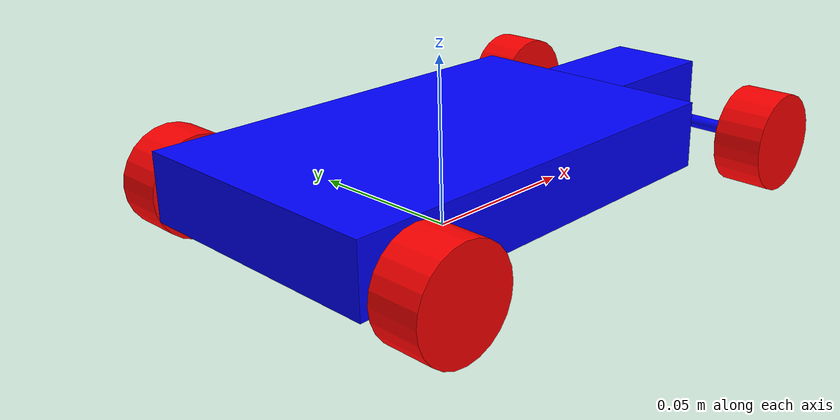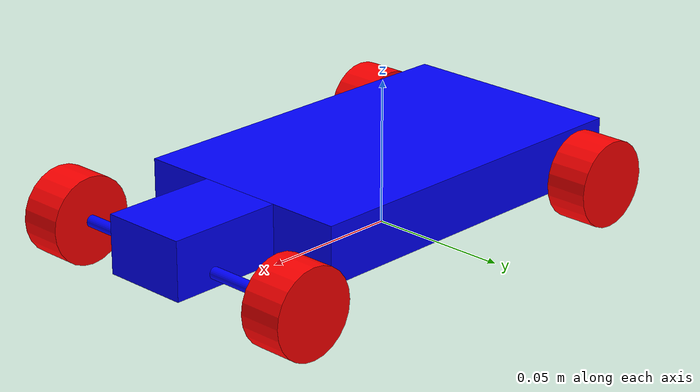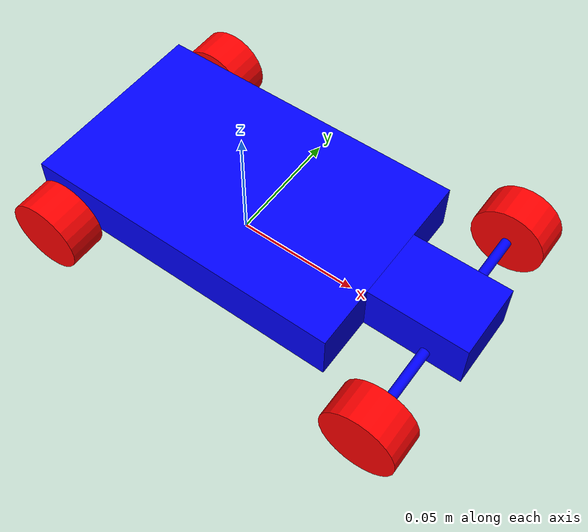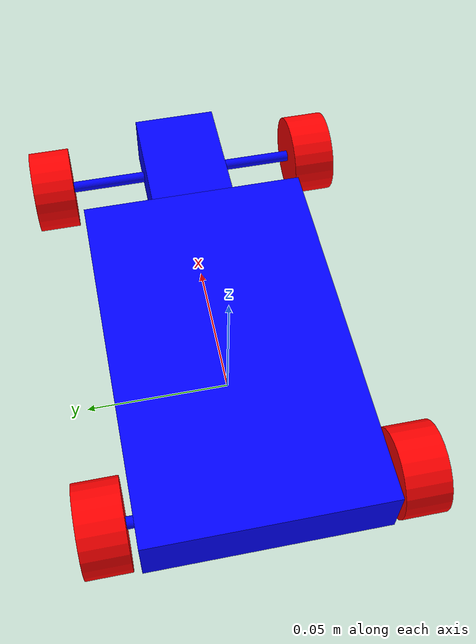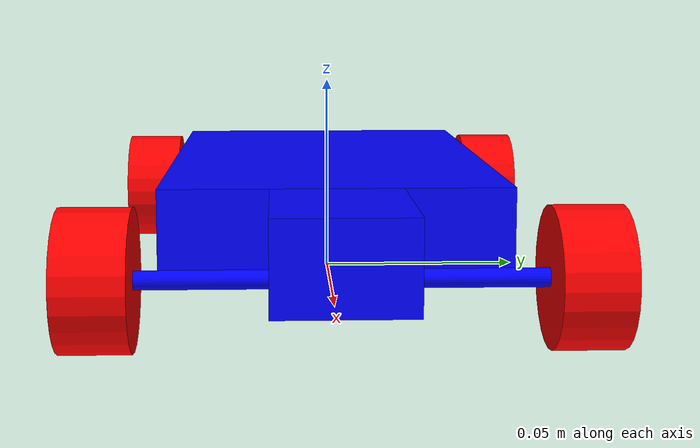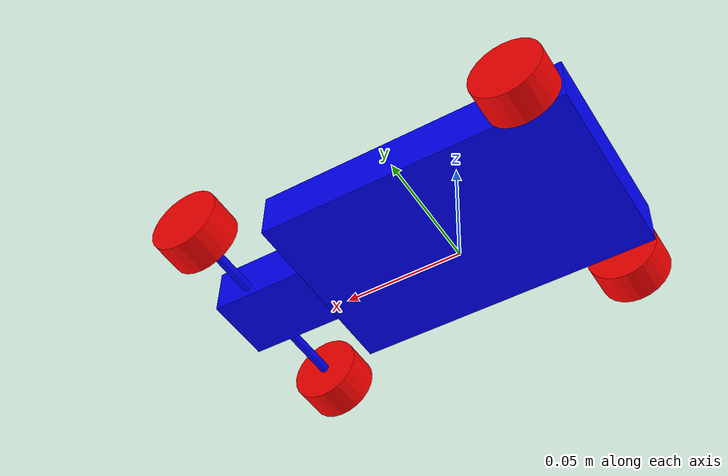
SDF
<?xml version="1.0" ?>
<sdf version="1.8">
    <model name='car' canonical_link='chassis'>
        <link name='chassis'>
            <pose relative_to='__model__'>0 0 0.02 0 0 0</pose>
            <inertial>
                <mass>1.15</mass>
                <inertia>
                    <ixx>0.0006516666666666667</ixx>
                    <ixy>0</ixy>
                    <ixz>0</ixz>
                    <iyy>0.001657916666666667</iyy>
                    <iyz>0</iyz>
                    <izz>0.0022329166666666665</izz>
                </inertia>
            </inertial>
            <visual name='visual'>
                <geometry>
                    <box>
                        <size>0.13 0.08 0.02</size>
                    </box>
                </geometry>
                <material>
                    <diffuse>0.0 0.0 1.0 1</diffuse>
                </material>
            </visual>
            <collision name='collision'>
                <geometry>
                    <box>
                        <size>0.13 0.08 0.02</size>
                    </box>
                </geometry>
            </collision>
            <sensor name="imu_sensor" type="imu">
                <pose relative_to='chassis'>0 0 0 0 0 0</pose>
                <imu>
                    <linear_acceleration>
                        <x>
                            <noise type="gaussian">
                                <mean>0.0</mean>
                                <stddev>0.02</stddev>
                                <bias_mean>0.0</bias_mean>
                                <bias_stddev>0.000</bias_stddev>
                            </noise>
                        </x>
                    </linear_acceleration>
                    <angular_velocity>
                        <z>
                            <noise type="gaussian">
                                <mean>0.0</mean>
                                <stddev>0.01</stddev>
                                <bias_mean>0.0</bias_mean>
                                <bias_stddev>0.0</bias_stddev>
                            </noise>
                        </z>
                    </angular_velocity>
                </imu>
                <always_on>1</always_on>
                <update_rate>10</update_rate>
                <visualize>true</visualize>
                <topic>/imu_sensor</topic>
            </sensor>
            <sensor name='gpu_lidar' type='gpu_lidar'>
                <pose relative_to='chassis'>0 0 0.3 0 0 0</pose>
                <topic>/lidar_sensor</topic>
                <update_rate>10</update_rate>
                <ray>
                    <scan>
                        <horizontal>
                            <samples>640</samples>
                            <resolution>1</resolution>
                            <min_angle>-1.396263</min_angle>
                            <max_angle>1.396263</max_angle>
                        </horizontal>
                        <vertical>
                            <samples>1</samples>
                            <resolution>1</resolution>
                            <min_angle>0</min_angle>
                            <max_angle>0</max_angle>
                        </vertical>
                    </scan>
                    <range>
                        <min>0.1</min>
                        <max>100.0</max>
                        <resolution>0.1</resolution>
                    </range>
                </ray>
                <always_on>1</always_on>
                <visualize>true</visualize>
            </sensor>
        </link>
        <link name='front_chassis'>
            <pose relative_to='chassis'>0.085 0 0 0 0 0</pose>
            <visual name='visual'>
                <geometry>
                    <box>
                        <size>0.04 0.03 0.02</size>
                    </box>
                </geometry>
                <material>
                    <diffuse>0.0 0.0 1.0 1</diffuse>
                </material>
            </visual>
        </link>
        <link name='pos_front_axle'>
            <pose relative_to='front_chassis'>0.0050000000000000044 0 -0.005 0 0 0</pose>
        </link>
        <link name='front_axle'>
            <pose relative_to='pos_front_axle'>0 0 0 -1.5707 0 0</pose>
            <visual name='visual'>
                <geometry>
                    <cylinder>
                        <radius>0.002</radius>
                        <length>0.085</length>
                    </cylinder>
                </geometry>
                <material>
                    <diffuse>0.0 0.0 1.0 1</diffuse>
                </material>
            </visual>
        </link>
        <link name='pos_rear_axle'>
            <pose relative_to='chassis'>-0.05 0 -0.005 0 0 0</pose>
        </link>
        <link name='rear_axle'>
            <pose relative_to='pos_rear_axle'>0 0 0 -1.5707 0 0</pose>
            <visual name='visual'>
                <geometry>
                    <cylinder>
                        <radius>0.002</radius>
                        <length>0.085</length>
                    </cylinder>
                </geometry>
                <material>
                    <diffuse>0.0 0.0 1.0 1</diffuse>
                </material>
            </visual>
        </link>
        <link name='left_steering_link'>
            <pose relative_to="pos_front_axle">0 0.04 0 0 0 0</pose>
        </link>
        <link name='right_steering_link'>
            <pose relative_to="pos_front_axle">0 -0.04 0 0 0 0</pose>
        </link>
        <link name='left_frontwheel'>
            <pose relative_to="pos_front_axle">0 0.05 0 -1.5707 0 0</pose>
            <inertial>
                <mass>0.1</mass>
                <inertia>
                    <ixx>7.499999999999999e-06</ixx>
                    <ixy>0</ixy>
                    <ixz>0</ixz>
                    <iyy>7.499999999999999e-06</iyy>
                    <iyz>0</iyz>
                    <izz>1.125e-05</izz>
                </inertia>
            </inertial>
            <visual name='visual'>
                <geometry>
                    <cylinder><radius>0.015</radius><length>0.015</length></cylinder>
                </geometry>
                <material><diffuse>1.0 0.0 0.0 1</diffuse></material>
            </visual>
            <collision name='collision'>
                <geometry>
                    <cylinder><radius>0.015</radius><length>0.015</length></cylinder>
                </geometry>
            </collision>
        </link>
        <link name='right_frontwheel'>
            <pose relative_to="pos_front_axle">0 -0.05 0 -1.5707 0 0</pose>
            <inertial>
                <mass>0.1</mass>
                <inertia>
                    <ixx>7.499999999999999e-06</ixx>
                    <ixy>0</ixy>
                    <ixz>0</ixz>
                    <iyy>7.499999999999999e-06</iyy>
                    <iyz>0</iyz>
                    <izz>1.125e-05</izz>
                </inertia>
            </inertial>
            <visual name='visual'>
                <geometry>
                    <cylinder><radius>0.015</radius><length>0.015</length></cylinder>
                </geometry>
                <material><diffuse>1.0 0.0 0.0 1</diffuse></material>
            </visual>
            <collision name='collision'>
                <geometry>
                    <cylinder><radius>0.015</radius><length>0.015</length></cylinder>
                </geometry>
            </collision>
        </link>

        <link name='left_backwheel'>
            <pose relative_to="pos_rear_axle">0 0.05 0 -1.5707 0 0</pose>
            <inertial>
                <mass>0.1</mass>
                <inertia>
                    <ixx>7.499999999999999e-06</ixx>
                    <ixy>0</ixy>
                    <ixz>0</ixz>
                    <iyy>7.499999999999999e-06</iyy>
                    <iyz>0</iyz>
                    <izz>1.125e-05</izz>
                </inertia>
            </inertial>
            <visual name='visual'>
                <geometry>
                    <cylinder>
                        <radius>0.015</radius>
                        <length>0.015</length>
                    </cylinder>
                </geometry>
                <material>
                    <diffuse>1.0 0.0 0.0 1</diffuse>
                </material>
            </visual>
            <collision name='collision'>
                <geometry>
                    <cylinder>
                        <radius>0.015</radius>
                        <length>0.015</length>
                    </cylinder>
                </geometry>
            </collision>
        </link>

        <link name='right_backwheel'>
            <pose relative_to="pos_rear_axle">0 -0.05 0 -1.5707 0 0</pose>
            <inertial>
                <mass>0.1</mass>
                <inertia>
                    <ixx>7.499999999999999e-06</ixx>
                    <ixy>0</ixy>
                    <ixz>0</ixz>
                    <iyy>7.499999999999999e-06</iyy>
                    <iyz>0</iyz>
                    <izz>1.125e-05</izz>
                </inertia>
            </inertial>
            <visual name='visual'>
                <geometry>
                    <cylinder>
                        <radius>0.015</radius>
                        <length>0.015</length>
                    </cylinder>
                </geometry>
                <material>
                    <diffuse>1.0 0.0 0.0 1</diffuse>
                </material>
            </visual>
            <collision name='collision'>
                <geometry>
                    <cylinder>
                        <radius>0.015</radius>
                        <length>0.015</length>
                    </cylinder>
                </geometry>
            </collision>
        </link>
        <joint name="front_chassis_joint" type="fixed">
            <parent>chassis</parent>
            <child>front_chassis</child>
        </joint>
        <joint name="front_axle_joint" type="fixed">
            <parent>front_chassis</parent>
            <child>front_axle</child>
        </joint>
        <joint name='left_steering_joint' type='revolute'>
            <pose relative_to='left_steering_link'/>
            <parent>front_chassis</parent>
            <child>left_steering_link</child>
            <axis>
                <xyz expressed_in='__model__'>0 0 1</xyz>
                <limit>
                    <lower>-0.6</lower>  <!-- ~34 degrees -->
                    <upper>0.6</upper>
                    <effort>10</effort>
                </limit>
            </axis>
        </joint>

        <joint name='right_steering_joint' type='revolute'>
            <pose relative_to='right_steering_link'/>
            <parent>front_chassis</parent>
            <child>right_steering_link</child>
            <axis>
                <xyz expressed_in='__model__'>0 0 1</xyz>
                <limit>
                    <lower>-0.6</lower>
                    <upper>0.6</upper>
                    <effort>10</effort>
                </limit>
            </axis>
        </joint>

        <joint name='left_frontwheel_joint' type='revolute'>
            <pose relative_to='left_frontwheel'/>
            <parent>left_steering_link</parent>
            <child>left_frontwheel</child>
            <axis>
                <xyz expressed_in='__model__'>0 1 0</xyz>
            </axis>
        </joint>

        <joint name='right_frontwheel_joint' type='revolute'>
            <pose relative_to='right_frontwheel'/>
            <parent>right_steering_link</parent>
            <child>right_frontwheel</child>
            <axis>
                <xyz expressed_in='__model__'>0 1 0</xyz>
            </axis>
        </joint>

        <joint name='left_backwheel_joint' type='revolute'>
            <pose relative_to='left_backwheel'/>
            <parent>chassis</parent>
            <child>left_backwheel</child>
            <axis>
                <xyz expressed_in='__model__'>0 1 0</xyz>
                <limit>
                    <effort>10</effort>
                </limit>
            </axis>
        </joint>

        <joint name='right_backwheel_joint' type='revolute'>
            <pose relative_to='right_backwheel'/>
            <parent>chassis</parent>
            <child>right_backwheel</child>
            <axis>
                <xyz expressed_in='__model__'>0 1 0</xyz>
                <limit>
                    <effort>10</effort>
                </limit>
            </axis>
        </joint>
        <plugin
            filename="gz-sim-ackermann-steering-system"
            name="gz::sim::systems::AckermannSteering">
            <left_joint>left_backwheel_joint</left_joint>
            <right_joint>right_backwheel_joint</right_joint>
            <left_steering_joint>left_steering_joint</left_steering_joint>
            <right_steering_joint>right_steering_joint</right_steering_joint>
            <kingpin_width>0.08</kingpin_width>       <!-- matches wheel_separation -->
            <steering_limit>0.6</steering_limit>     <!-- must match joint limits -->
            <wheel_base>0.14</wheel_base>             <!-- distance front to rear axle -->
            <wheel_separation>0.1</wheel_separation>
            <wheel_radius>0.015</wheel_radius>
            <odom_publish_frequency>10</odom_publish_frequency>
            <topic>cmd_vel</topic>
        </plugin>
        <plugin
            filename="libgazebo_msg_bridge.so"
            name="MessageBridge">
        </plugin>
        <plugin
            filename="gz-sim-imu-system"
            name="gz::sim::systems::Imu">
        </plugin>
        <plugin
            filename="gz-sim-joint-state-publisher-system"
            name="gz::sim::systems::JointStatePublisher">
            <joint_name>left_backwheel_joint</joint_name>
            <joint_name>right_backwheel_joint</joint_name>
            <joint_name>left_steering_joint</joint_name>
            <joint_name>right_steering_joint</joint_name>
            <topic>/wheel_states</topic>
        </plugin>
    </model>
</sdf>
